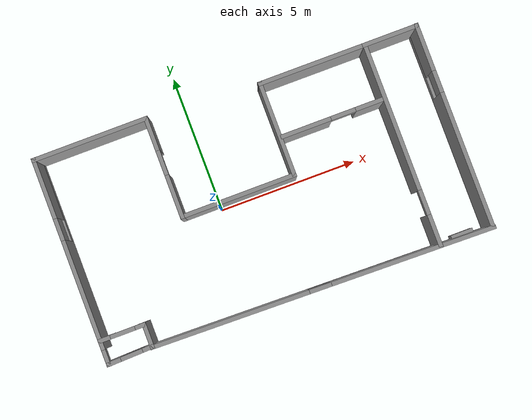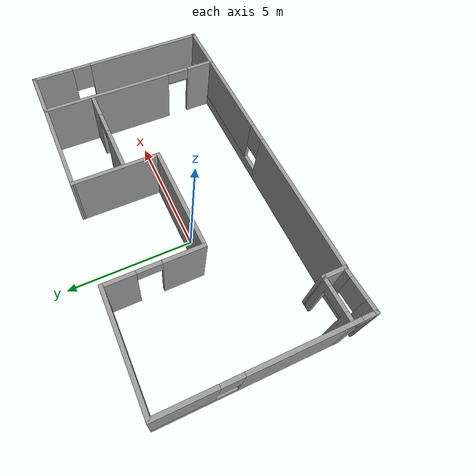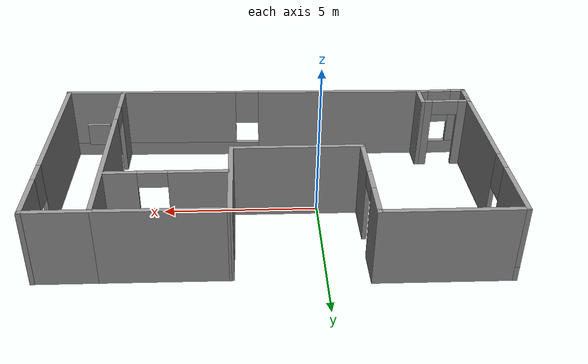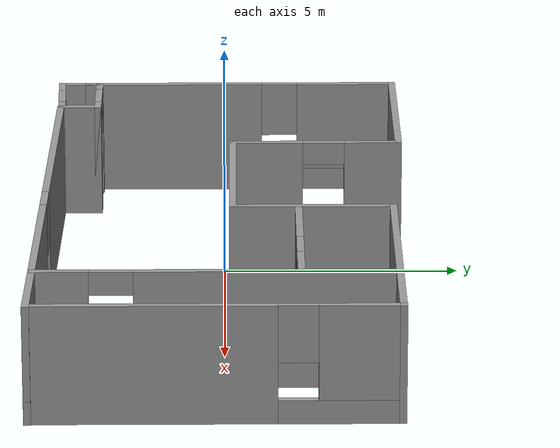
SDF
<?xml version='1.0'?>
<sdf version='1.6'>
  <model name='class'>
    <pose frame=''>1.54338 -0.063628 0 0 -0 0</pose>
    <link name='Wall_0'>
      <pose frame=''>-6.98338 0.408628 0 0 -0 1.5708</pose>
      <visual name='Wall_0_Visual_0'>
        <pose frame=''>-1.50964 0 1.25 0 -0 0</pose>
        <geometry>
          <box>
            <size>3.98071 0.15 2.5</size>
          </box>
        </geometry>
        <material>
          <script>
            <uri>file://media/materials/scripts/gazebo.material</uri>
            <name>Gazebo/Grey</name>
          </script>
          <ambient>1 1 1 1</ambient>
        </material>
        <meta>
          <layer>0</layer>
        </meta>
      </visual>
      <collision name='Wall_0_Collision_0'>
        <geometry>
          <box>
            <size>3.98071 0.15 2.5</size>
          </box>
        </geometry>
        <pose frame=''>-1.50964 0 1.25 0 -0 0</pose>
      </collision>
      <visual name='Wall_0_Visual_1'>
        <pose frame=''>1.99036 0 0.25 0 -0 0</pose>
        <geometry>
          <box>
            <size>3.01929 0.15 0.5</size>
          </box>
        </geometry>
        <material>
          <script>
            <uri>file://media/materials/scripts/gazebo.material</uri>
            <name>Gazebo/Grey</name>
          </script>
          <ambient>1 1 1 1</ambient>
        </material>
        <meta>
          <layer>0</layer>
        </meta>
      </visual>
      <collision name='Wall_0_Collision_1'>
        <geometry>
          <box>
            <size>3.01929 0.15 0.5</size>
          </box>
        </geometry>
        <pose frame=''>1.99036 0 0.25 0 -0 0</pose>
      </collision>
      <visual name='Wall_0_Visual_2'>
        <pose frame=''>2.39036 0 1.5 0 -0 0</pose>
        <geometry>
          <box>
            <size>2.21929 0.15 2</size>
          </box>
        </geometry>
        <material>
          <script>
            <uri>file://media/materials/scripts/gazebo.material</uri>
            <name>Gazebo/Grey</name>
          </script>
          <ambient>1 1 1 1</ambient>
        </material>
        <meta>
          <layer>0</layer>
        </meta>
      </visual>
      <collision name='Wall_0_Collision_2'>
        <geometry>
          <box>
            <size>2.21929 0.15 2</size>
          </box>
        </geometry>
        <pose frame=''>2.39036 0 1.5 0 -0 0</pose>
      </collision>
      <visual name='Wall_0_Visual_3'>
        <pose frame=''>0.880714 0 1.9 0 -0 0</pose>
        <geometry>
          <box>
            <size>0.8 0.15 1.2</size>
          </box>
        </geometry>
        <material>
          <script>
            <uri>file://media/materials/scripts/gazebo.material</uri>
            <name>Gazebo/Grey</name>
          </script>
          <ambient>1 1 1 1</ambient>
        </material>
        <meta>
          <layer>0</layer>
        </meta>
      </visual>
      <collision name='Wall_0_Collision_3'>
        <geometry>
          <box>
            <size>0.8 0.15 1.2</size>
          </box>
        </geometry>
        <pose frame=''>0.880714 0 1.9 0 -0 0</pose>
      </collision>
    </link>
    <link name='Wall_13'>
      <collision name='Wall_13_Collision'>
        <geometry>
          <box>
            <size>4.25 0.15 2.5</size>
          </box>
        </geometry>
        <pose frame=''>0 0 1.25 0 -0 0</pose>
      </collision>
      <visual name='Wall_13_Visual'>
        <pose frame=''>0 0 1.25 0 -0 0</pose>
        <geometry>
          <box>
            <size>4.25 0.15 2.5</size>
          </box>
        </geometry>
        <material>
          <script>
            <uri>file://media/materials/scripts/gazebo.material</uri>
            <name>Gazebo/Grey</name>
          </script>
          <ambient>1 1 1 1</ambient>
        </material>
        <meta>
          <layer>0</layer>
        </meta>
      </visual>
      <pose frame=''>-4.93338 3.83363 0 0 -0 0</pose>
    </link>
    <link name='Wall_14'>
      <pose frame=''>-2.88338 2.03363 0 0 0 -1.5708</pose>
      <visual name='Wall_14_Visual_0'>
        <pose frame=''>-1.24935 0 1.25 0 -0 0</pose>
        <geometry>
          <box>
            <size>1.25129 0.15 2.5</size>
          </box>
        </geometry>
        <material>
          <script>
            <uri>file://media/materials/scripts/gazebo.material</uri>
            <name>Gazebo/Grey</name>
          </script>
          <ambient>1 1 1 1</ambient>
        </material>
        <meta>
          <layer>0</layer>
        </meta>
      </visual>
      <collision name='Wall_14_Collision_0'>
        <geometry>
          <box>
            <size>1.25129 0.15 2.5</size>
          </box>
        </geometry>
        <pose frame=''>-1.24935 0 1.25 0 -0 0</pose>
      </collision>
      <visual name='Wall_14_Visual_1'>
        <pose frame=''>1.07565 0 1.25 0 -0 0</pose>
        <geometry>
          <box>
            <size>1.59871 0.15 2.5</size>
          </box>
        </geometry>
        <material>
          <script>
            <uri>file://media/materials/scripts/gazebo.material</uri>
            <name>Gazebo/Grey</name>
          </script>
          <ambient>1 1 1 1</ambient>
        </material>
        <meta>
          <layer>0</layer>
        </meta>
      </visual>
      <collision name='Wall_14_Collision_1'>
        <geometry>
          <box>
            <size>1.59871 0.15 2.5</size>
          </box>
        </geometry>
        <pose frame=''>1.07565 0 1.25 0 -0 0</pose>
      </collision>
      <visual name='Wall_14_Visual_2'>
        <pose frame=''>-0.173708 0 2.25 0 -0 0</pose>
        <geometry>
          <box>
            <size>0.9 0.15 0.5</size>
          </box>
        </geometry>
        <material>
          <script>
            <uri>file://media/materials/scripts/gazebo.material</uri>
            <name>Gazebo/Grey</name>
          </script>
          <ambient>1 1 1 1</ambient>
        </material>
        <meta>
          <layer>0</layer>
        </meta>
      </visual>
      <collision name='Wall_14_Collision_2'>
        <geometry>
          <box>
            <size>0.9 0.15 0.5</size>
          </box>
        </geometry>
        <pose frame=''>-0.173708 0 2.25 0 -0 0</pose>
      </collision>
    </link>
    <link name='Wall_15'>
      <collision name='Wall_15_Collision'>
        <geometry>
          <box>
            <size>4.25 0.15 2.5</size>
          </box>
        </geometry>
        <pose frame=''>0 0 1.25 0 -0 0</pose>
      </collision>
      <visual name='Wall_15_Visual'>
        <pose frame=''>0 0 1.25 0 -0 0</pose>
        <geometry>
          <box>
            <size>4.25 0.15 2.5</size>
          </box>
        </geometry>
        <material>
          <script>
            <uri>file://media/materials/scripts/gazebo.material</uri>
            <name>Gazebo/Grey</name>
          </script>
          <ambient>1 1 1 1</ambient>
        </material>
        <meta>
          <layer>0</layer>
        </meta>
      </visual>
      <pose frame=''>-0.833377 0.233628 0 0 -0 0</pose>
    </link>
    <link name='Wall_16'>
      <collision name='Wall_16_Collision'>
        <geometry>
          <box>
            <size>3.5 0.15 2.5</size>
          </box>
        </geometry>
        <pose frame=''>0 0 1.25 0 -0 0</pose>
      </collision>
      <visual name='Wall_16_Visual'>
        <pose frame=''>0 0 1.25 0 -0 0</pose>
        <geometry>
          <box>
            <size>3.5 0.15 2.5</size>
          </box>
        </geometry>
        <material>
          <script>
            <uri>file://media/materials/scripts/gazebo.material</uri>
            <name>Gazebo/Grey</name>
          </script>
          <ambient>1 1 1 1</ambient>
        </material>
        <meta>
          <layer>0</layer>
        </meta>
      </visual>
      <pose frame=''>1.21662 1.90863 0 0 -0 1.5708</pose>
    </link>
    <link name='Wall_17'>
      <collision name='Wall_17_Collision'>
        <geometry>
          <box>
            <size>3.99399 0.15 2.5</size>
          </box>
        </geometry>
        <pose frame=''>0 0 1.25 0 -0 0</pose>
      </collision>
      <visual name='Wall_17_Visual'>
        <pose frame=''>0 0 1.25 0 -0 0</pose>
        <geometry>
          <box>
            <size>3.99399 0.15 2.5</size>
          </box>
        </geometry>
        <material>
          <script>
            <uri>file://media/materials/scripts/gazebo.material</uri>
            <name>Gazebo/Grey</name>
          </script>
          <ambient>1 1 1 1</ambient>
        </material>
        <meta>
          <layer>0</layer>
        </meta>
      </visual>
      <pose frame=''>3.13862 3.58112 0 0 0 -0.001304</pose>
    </link>
    <link name='Wall_18'>
      <pose frame=''>5.06061 -0.096385 0 0 0 -1.5708</pose>
      <visual name='Wall_18_Visual_0'>
        <pose frame=''>-1.0444 0 1.25 0 -0 0</pose>
        <geometry>
          <box>
            <size>5.41121 0.15 2.5</size>
          </box>
        </geometry>
        <material>
          <script>
            <uri>file://media/materials/scripts/gazebo.material</uri>
            <name>Gazebo/Grey</name>
          </script>
          <ambient>1 1 1 1</ambient>
        </material>
        <meta>
          <layer>0</layer>
        </meta>
      </visual>
      <collision name='Wall_18_Collision_0'>
        <geometry>
          <box>
            <size>5.41121 0.15 2.5</size>
          </box>
        </geometry>
        <pose frame=''>-1.0444 0 1.25 0 -0 0</pose>
      </collision>
      <visual name='Wall_18_Visual_1'>
        <pose frame=''>3.1556 0 1.25 0 -0 0</pose>
        <geometry>
          <box>
            <size>1.18879 0.15 2.5</size>
          </box>
        </geometry>
        <material>
          <script>
            <uri>file://media/materials/scripts/gazebo.material</uri>
            <name>Gazebo/Grey</name>
          </script>
          <ambient>1 1 1 1</ambient>
        </material>
        <meta>
          <layer>0</layer>
        </meta>
      </visual>
      <collision name='Wall_18_Collision_1'>
        <geometry>
          <box>
            <size>1.18879 0.15 2.5</size>
          </box>
        </geometry>
        <pose frame=''>3.1556 0 1.25 0 -0 0</pose>
      </collision>
      <visual name='Wall_18_Visual_2'>
        <pose frame=''>2.11121 0 2.25 0 -0 0</pose>
        <geometry>
          <box>
            <size>0.9 0.15 0.5</size>
          </box>
        </geometry>
        <material>
          <script>
            <uri>file://media/materials/scripts/gazebo.material</uri>
            <name>Gazebo/Grey</name>
          </script>
          <ambient>1 1 1 1</ambient>
        </material>
        <meta>
          <layer>0</layer>
        </meta>
      </visual>
      <collision name='Wall_18_Collision_2'>
        <geometry>
          <box>
            <size>0.9 0.15 0.5</size>
          </box>
        </geometry>
        <pose frame=''>2.11121 0 2.25 0 -0 0</pose>
      </collision>
    </link>
    <link name='Wall_20'>
      <pose frame=''>6.96662 -0.088002 0 0 -0 1.5708</pose>
      <visual name='Wall_20_Visual_0'>
        <pose frame=''>-1.27038 0 1.25 0 -0 0</pose>
        <geometry>
          <box>
            <size>4.95923 0.15 2.5</size>
          </box>
        </geometry>
        <material>
          <script>
            <uri>file://media/materials/scripts/gazebo.material</uri>
            <name>Gazebo/Grey</name>
          </script>
          <ambient>1 1 1 1</ambient>
        </material>
        <meta>
          <layer>0</layer>
        </meta>
      </visual>
      <collision name='Wall_20_Collision_0'>
        <geometry>
          <box>
            <size>4.95923 0.15 2.5</size>
          </box>
        </geometry>
        <pose frame=''>-1.27038 0 1.25 0 -0 0</pose>
      </collision>
      <visual name='Wall_20_Visual_1'>
        <pose frame=''>2.47962 0 0.25 0 -0 0</pose>
        <geometry>
          <box>
            <size>2.54076 0.15 0.5</size>
          </box>
        </geometry>
        <material>
          <script>
            <uri>file://media/materials/scripts/gazebo.material</uri>
            <name>Gazebo/Grey</name>
          </script>
          <ambient>1 1 1 1</ambient>
        </material>
        <meta>
          <layer>0</layer>
        </meta>
      </visual>
      <collision name='Wall_20_Collision_1'>
        <geometry>
          <box>
            <size>2.54076 0.15 0.5</size>
          </box>
        </geometry>
        <pose frame=''>2.47962 0 0.25 0 -0 0</pose>
      </collision>
      <visual name='Wall_20_Visual_2'>
        <pose frame=''>2.87962 0 1.5 0 -0 0</pose>
        <geometry>
          <box>
            <size>1.74076 0.15 2</size>
          </box>
        </geometry>
        <material>
          <script>
            <uri>file://media/materials/scripts/gazebo.material</uri>
            <name>Gazebo/Grey</name>
          </script>
          <ambient>1 1 1 1</ambient>
        </material>
        <meta>
          <layer>0</layer>
        </meta>
      </visual>
      <collision name='Wall_20_Collision_2'>
        <geometry>
          <box>
            <size>1.74076 0.15 2</size>
          </box>
        </geometry>
        <pose frame=''>2.87962 0 1.5 0 -0 0</pose>
      </collision>
      <visual name='Wall_20_Visual_3'>
        <pose frame=''>1.60923 0 1.9 0 -0 0</pose>
        <geometry>
          <box>
            <size>0.8 0.15 1.2</size>
          </box>
        </geometry>
        <material>
          <script>
            <uri>file://media/materials/scripts/gazebo.material</uri>
            <name>Gazebo/Grey</name>
          </script>
          <ambient>1 1 1 1</ambient>
        </material>
        <meta>
          <layer>0</layer>
        </meta>
      </visual>
      <collision name='Wall_20_Collision_3'>
        <geometry>
          <box>
            <size>0.8 0.15 1.2</size>
          </box>
        </geometry>
        <pose frame=''>1.60923 0 1.9 0 -0 0</pose>
      </collision>
    </link>
    <link name='Wall_22'>
      <collision name='Wall_22_Collision'>
        <geometry>
          <box>
            <size>2 0.15 2.5</size>
          </box>
        </geometry>
        <pose frame=''>0 0 1.25 0 -0 0</pose>
      </collision>
      <visual name='Wall_22_Visual'>
        <pose frame=''>0 0 1.25 0 -0 0</pose>
        <geometry>
          <box>
            <size>2 0.15 2.5</size>
          </box>
        </geometry>
        <material>
          <script>
            <uri>file://media/materials/scripts/gazebo.material</uri>
            <name>Gazebo/Grey</name>
          </script>
          <ambient>1 1 1 1</ambient>
        </material>
        <meta>
          <layer>0</layer>
        </meta>
      </visual>
      <pose frame=''>5.96831 3.57862 0 0 -0 0</pose>
    </link>
    <link name='Wall_25'>
      <collision name='Wall_25_Collision'>
        <geometry>
          <box>
            <size>0.15 0.15 2.5</size>
          </box>
        </geometry>
        <pose frame=''>0 0 1.25 0 -0 0</pose>
      </collision>
      <visual name='Wall_25_Visual'>
        <pose frame=''>0 0 1.25 0 -0 0</pose>
        <geometry>
          <box>
            <size>0.15 0.15 2.5</size>
          </box>
        </geometry>
        <material>
          <script>
            <uri>file://media/materials/scripts/gazebo.material</uri>
            <name>Gazebo/Grey</name>
          </script>
          <ambient>1 1 1 1</ambient>
        </material>
        <meta>
          <layer>0</layer>
        </meta>
      </visual>
      <pose frame=''>6.96662 3.587 0 0 -0 0</pose>
    </link>
    <link name='Wall_27'>
      <pose frame=''>3.11204 1.60739 0 0 -0 0</pose>
      <visual name='Wall_27_Visual_0'>
        <pose frame=''>-0.955861 0 1.25 0 -0 0</pose>
        <geometry>
          <box>
            <size>1.83828 0.15 2.5</size>
          </box>
        </geometry>
        <material>
          <script>
            <uri>file://media/materials/scripts/gazebo.material</uri>
            <name>Gazebo/Grey</name>
          </script>
          <ambient>1 1 1 1</ambient>
        </material>
        <meta>
          <layer>0</layer>
        </meta>
      </visual>
      <collision name='Wall_27_Collision_0'>
        <geometry>
          <box>
            <size>1.83828 0.15 2.5</size>
          </box>
        </geometry>
        <pose frame=''>-0.955861 0 1.25 0 -0 0</pose>
      </collision>
      <visual name='Wall_27_Visual_1'>
        <pose frame=''>1.36914 0 1.25 0 -0 0</pose>
        <geometry>
          <box>
            <size>1.01172 0.15 2.5</size>
          </box>
        </geometry>
        <material>
          <script>
            <uri>file://media/materials/scripts/gazebo.material</uri>
            <name>Gazebo/Grey</name>
          </script>
          <ambient>1 1 1 1</ambient>
        </material>
        <meta>
          <layer>0</layer>
        </meta>
      </visual>
      <collision name='Wall_27_Collision_1'>
        <geometry>
          <box>
            <size>1.01172 0.15 2.5</size>
          </box>
        </geometry>
        <pose frame=''>1.36914 0 1.25 0 -0 0</pose>
      </collision>
      <visual name='Wall_27_Visual_2'>
        <pose frame=''>0.413279 0 2.25 0 -0 0</pose>
        <geometry>
          <box>
            <size>0.9 0.15 0.5</size>
          </box>
        </geometry>
        <material>
          <script>
            <uri>file://media/materials/scripts/gazebo.material</uri>
            <name>Gazebo/Grey</name>
          </script>
          <ambient>1 1 1 1</ambient>
        </material>
        <meta>
          <layer>0</layer>
        </meta>
      </visual>
      <collision name='Wall_27_Collision_2'>
        <geometry>
          <box>
            <size>0.9 0.15 0.5</size>
          </box>
        </geometry>
        <pose frame=''>0.413279 0 2.25 0 -0 0</pose>
      </collision>
    </link>
    <link name='Wall_4'>
      <pose frame=''>-6.18338 -2.76637 0 0 -0 0</pose>
      <visual name='Wall_4_Visual_0'>
        <pose frame=''>-0.6525 0 1.25 0 -0 0</pose>
        <geometry>
          <box>
            <size>0.445 0.15 2.5</size>
          </box>
        </geometry>
        <material>
          <script>
            <uri>file://media/materials/scripts/gazebo.material</uri>
            <name>Gazebo/Grey</name>
          </script>
          <ambient>1 1 1 1</ambient>
        </material>
        <meta>
          <layer>0</layer>
        </meta>
      </visual>
      <collision name='Wall_4_Collision_0'>
        <geometry>
          <box>
            <size>0.445 0.15 2.5</size>
          </box>
        </geometry>
        <pose frame=''>-0.6525 0 1.25 0 -0 0</pose>
      </collision>
      <visual name='Wall_4_Visual_1'>
        <pose frame=''>0.6725 0 1.25 0 -0 0</pose>
        <geometry>
          <box>
            <size>0.405 0.15 2.5</size>
          </box>
        </geometry>
        <material>
          <script>
            <uri>file://media/materials/scripts/gazebo.material</uri>
            <name>Gazebo/Grey</name>
          </script>
          <ambient>1 1 1 1</ambient>
        </material>
        <meta>
          <layer>0</layer>
        </meta>
      </visual>
      <collision name='Wall_4_Collision_1'>
        <geometry>
          <box>
            <size>0.405 0.15 2.5</size>
          </box>
        </geometry>
        <pose frame=''>0.6725 0 1.25 0 -0 0</pose>
      </collision>
      <visual name='Wall_4_Visual_2'>
        <pose frame=''>0.02 0 2.25 0 -0 0</pose>
        <geometry>
          <box>
            <size>0.9 0.15 0.5</size>
          </box>
        </geometry>
        <material>
          <script>
            <uri>file://media/materials/scripts/gazebo.material</uri>
            <name>Gazebo/Grey</name>
          </script>
          <ambient>1 1 1 1</ambient>
        </material>
        <meta>
          <layer>0</layer>
        </meta>
      </visual>
      <collision name='Wall_4_Collision_2'>
        <geometry>
          <box>
            <size>0.9 0.15 0.5</size>
          </box>
        </geometry>
        <pose frame=''>0.02 0 2.25 0 -0 0</pose>
      </collision>
    </link>
    <link name='Wall_5'>
      <collision name='Wall_5_Collision'>
        <geometry>
          <box>
            <size>0.947399 0.15 2.5</size>
          </box>
        </geometry>
        <pose frame=''>0 0 1.25 0 -0 0</pose>
      </collision>
      <visual name='Wall_5_Visual'>
        <pose frame=''>0 0 1.25 0 -0 0</pose>
        <geometry>
          <box>
            <size>0.947399 0.15 2.5</size>
          </box>
        </geometry>
        <material>
          <script>
            <uri>file://media/materials/scripts/gazebo.material</uri>
            <name>Gazebo/Grey</name>
          </script>
          <ambient>1 1 1 1</ambient>
        </material>
        <meta>
          <layer>0</layer>
        </meta>
      </visual>
      <pose frame=''>-5.38338 -3.16507 0 0 0 -1.5708</pose>
    </link>
    <link name='Wall_6'>
      <pose frame=''>-6.18338 -3.59007 0 0 0 -3.10873</pose>
      <visual name='Wall_6_Visual_0'>
        <pose frame=''>-0.661609 0 1.25 0 -0 0</pose>
        <geometry>
          <box>
            <size>0.426781 0.15 2.5</size>
          </box>
        </geometry>
        <material>
          <script>
            <uri>file://media/materials/scripts/gazebo.material</uri>
            <name>Gazebo/Grey</name>
          </script>
          <ambient>1 1 1 1</ambient>
        </material>
        <meta>
          <layer>0</layer>
        </meta>
      </visual>
      <collision name='Wall_6_Collision_0'>
        <geometry>
          <box>
            <size>0.426781 0.15 2.5</size>
          </box>
        </geometry>
        <pose frame=''>-0.661609 0 1.25 0 -0 0</pose>
      </collision>
      <visual name='Wall_6_Visual_1'>
        <pose frame=''>0.213391 0 0.25 0 -0 0</pose>
        <geometry>
          <box>
            <size>1.32322 0.15 0.5</size>
          </box>
        </geometry>
        <material>
          <script>
            <uri>file://media/materials/scripts/gazebo.material</uri>
            <name>Gazebo/Grey</name>
          </script>
          <ambient>1 1 1 1</ambient>
        </material>
        <meta>
          <layer>0</layer>
        </meta>
      </visual>
      <collision name='Wall_6_Collision_1'>
        <geometry>
          <box>
            <size>1.32322 0.15 0.5</size>
          </box>
        </geometry>
        <pose frame=''>0.213391 0 0.25 0 -0 0</pose>
      </collision>
      <visual name='Wall_6_Visual_2'>
        <pose frame=''>0.613391 0 1.5 0 -0 0</pose>
        <geometry>
          <box>
            <size>0.523219 0.15 2</size>
          </box>
        </geometry>
        <material>
          <script>
            <uri>file://media/materials/scripts/gazebo.material</uri>
            <name>Gazebo/Grey</name>
          </script>
          <ambient>1 1 1 1</ambient>
        </material>
        <meta>
          <layer>0</layer>
        </meta>
      </visual>
      <collision name='Wall_6_Collision_2'>
        <geometry>
          <box>
            <size>0.523219 0.15 2</size>
          </box>
        </geometry>
        <pose frame=''>0.613391 0 1.5 0 -0 0</pose>
      </collision>
      <visual name='Wall_6_Visual_3'>
        <pose frame=''>-0.048219 0 1.9 0 -0 0</pose>
        <geometry>
          <box>
            <size>0.8 0.15 1.2</size>
          </box>
        </geometry>
        <material>
          <script>
            <uri>file://media/materials/scripts/gazebo.material</uri>
            <name>Gazebo/Grey</name>
          </script>
          <ambient>1 1 1 1</ambient>
        </material>
        <meta>
          <layer>0</layer>
        </meta>
      </visual>
      <collision name='Wall_6_Collision_3'>
        <geometry>
          <box>
            <size>0.8 0.15 1.2</size>
          </box>
        </geometry>
        <pose frame=''>-0.048219 0 1.9 0 -0 0</pose>
      </collision>
    </link>
    <link name='Wall_7'>
      <pose frame=''>-6.98338 -3.31637 0 0 -0 1.5708</pose>
      <visual name='Wall_7_Visual_0'>
        <pose frame=''>-0.3025 0 1.25 0 -0 0</pose>
        <geometry>
          <box>
            <size>0.145 0.15 2.5</size>
          </box>
        </geometry>
        <material>
          <script>
            <uri>file://media/materials/scripts/gazebo.material</uri>
            <name>Gazebo/Grey</name>
          </script>
          <ambient>1 1 1 1</ambient>
        </material>
        <meta>
          <layer>0</layer>
        </meta>
      </visual>
      <collision name='Wall_7_Collision_0'>
        <geometry>
          <box>
            <size>0.145 0.15 2.5</size>
          </box>
        </geometry>
        <pose frame=''>-0.3025 0 1.25 0 -0 0</pose>
      </collision>
      <visual name='Wall_7_Visual_1'>
        <pose frame=''>0.0725 0 2.25 0 -0 0</pose>
        <geometry>
          <box>
            <size>0.605 0.15 0.5</size>
          </box>
        </geometry>
        <material>
          <script>
            <uri>file://media/materials/scripts/gazebo.material</uri>
            <name>Gazebo/Grey</name>
          </script>
          <ambient>1 1 1 1</ambient>
        </material>
        <meta>
          <layer>0</layer>
        </meta>
      </visual>
      <collision name='Wall_7_Collision_1'>
        <geometry>
          <box>
            <size>0.605 0.15 0.5</size>
          </box>
        </geometry>
        <pose frame=''>0.0725 0 2.25 0 -0 0</pose>
      </collision>
    </link>
    <link name='Wall_9'>
      <pose frame=''>0.800269 -3.71112 0 0 0 -0.019574</pose>
      <visual name='Wall_9_Visual_0'>
        <pose frame=''>-3.37935 0 1.25 0 -0 0</pose>
        <geometry>
          <box>
            <size>5.76096 0.15 2.5</size>
          </box>
        </geometry>
        <material>
          <script>
            <uri>file://media/materials/scripts/gazebo.material</uri>
            <name>Gazebo/Grey</name>
          </script>
          <ambient>1 1 1 1</ambient>
        </material>
        <meta>
          <layer>0</layer>
        </meta>
      </visual>
      <collision name='Wall_9_Collision_0'>
        <geometry>
          <box>
            <size>5.76096 0.15 2.5</size>
          </box>
        </geometry>
        <pose frame=''>-3.37935 0 1.25 0 -0 0</pose>
      </collision>
      <visual name='Wall_9_Visual_1'>
        <pose frame=''>2.88048 0 0.25 0 -0 0</pose>
        <geometry>
          <box>
            <size>6.7587 0.15 0.5</size>
          </box>
        </geometry>
        <material>
          <script>
            <uri>file://media/materials/scripts/gazebo.material</uri>
            <name>Gazebo/Grey</name>
          </script>
          <ambient>1 1 1 1</ambient>
        </material>
        <meta>
          <layer>0</layer>
        </meta>
      </visual>
      <collision name='Wall_9_Collision_1'>
        <geometry>
          <box>
            <size>6.7587 0.15 0.5</size>
          </box>
        </geometry>
        <pose frame=''>2.88048 0 0.25 0 -0 0</pose>
      </collision>
      <visual name='Wall_9_Visual_2'>
        <pose frame=''>3.28048 0 1.5 0 -0 0</pose>
        <geometry>
          <box>
            <size>5.9587 0.15 2</size>
          </box>
        </geometry>
        <material>
          <script>
            <uri>file://media/materials/scripts/gazebo.material</uri>
            <name>Gazebo/Grey</name>
          </script>
          <ambient>1 1 1 1</ambient>
        </material>
        <meta>
          <layer>0</layer>
        </meta>
      </visual>
      <collision name='Wall_9_Collision_2'>
        <geometry>
          <box>
            <size>5.9587 0.15 2</size>
          </box>
        </geometry>
        <pose frame=''>3.28048 0 1.5 0 -0 0</pose>
      </collision>
      <visual name='Wall_9_Visual_3'>
        <pose frame=''>-0.098869 0 1.9 0 -0 0</pose>
        <geometry>
          <box>
            <size>0.8 0.15 1.2</size>
          </box>
        </geometry>
        <material>
          <script>
            <uri>file://media/materials/scripts/gazebo.material</uri>
            <name>Gazebo/Grey</name>
          </script>
          <ambient>1 1 1 1</ambient>
        </material>
        <meta>
          <layer>0</layer>
        </meta>
      </visual>
      <collision name='Wall_9_Collision_3'>
        <geometry>
          <box>
            <size>0.8 0.15 1.2</size>
          </box>
        </geometry>
        <pose frame=''>-0.098869 0 1.9 0 -0 0</pose>
      </collision>
    </link>
    <link name='Window_7'>
      <collision name='Window_7_Collision'>
        <geometry>
          <box>
            <size>0.8 0.17 0.8</size>
          </box>
        </geometry>
        <pose frame=''>0 0 0.4 0 -0 0</pose>
      </collision>
      <visual name='Window_7_Visual'>
        <pose frame=''>0 0 0.4 0 -0 0</pose>
        <geometry>
          <box>
            <size>0.8 0.17 0.8</size>
          </box>
        </geometry>
        <material>
          <script>
            <uri>file://media/materials/scripts/gazebo.material</uri>
            <name>Gazebo/Grey</name>
          </script>
        </material>
      </visual>
      <pose frame=''>6.03109 -3.69912 0.5 0 -0 0</pose>
    </link>
    <static>1</static>
  </model>
</sdf>
